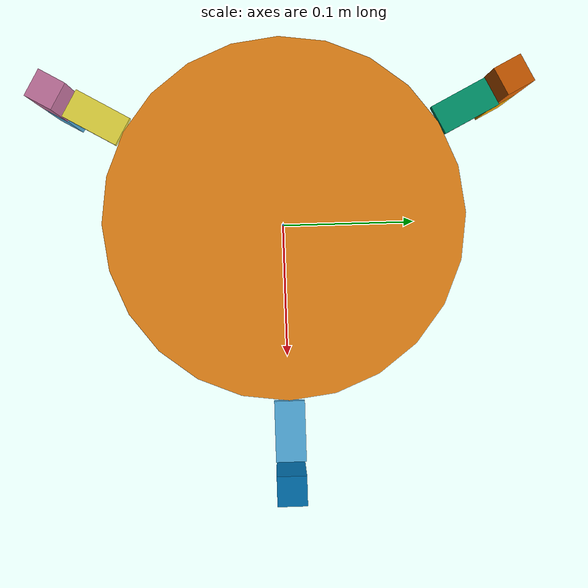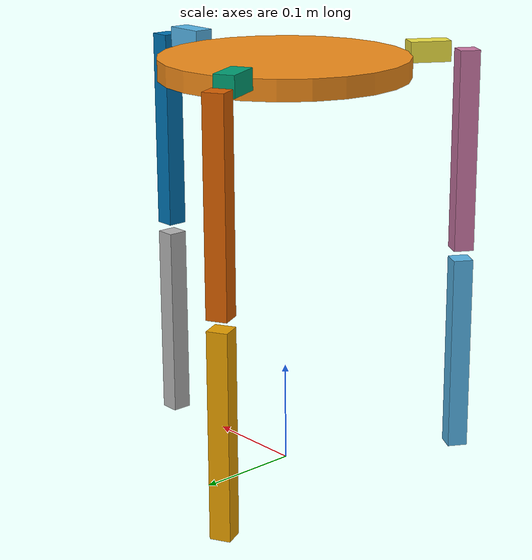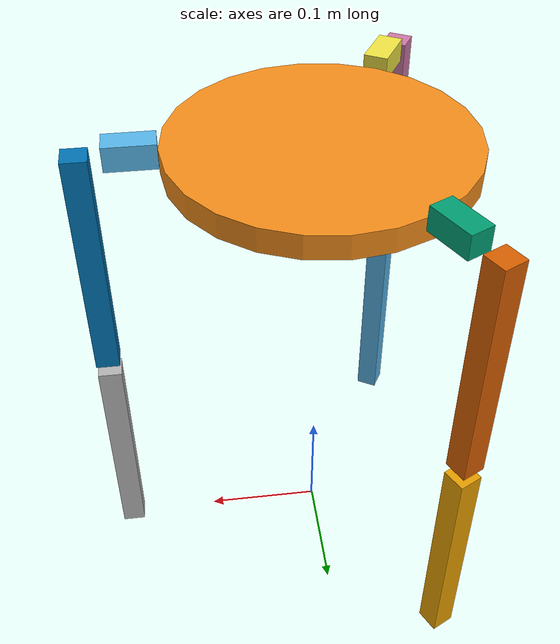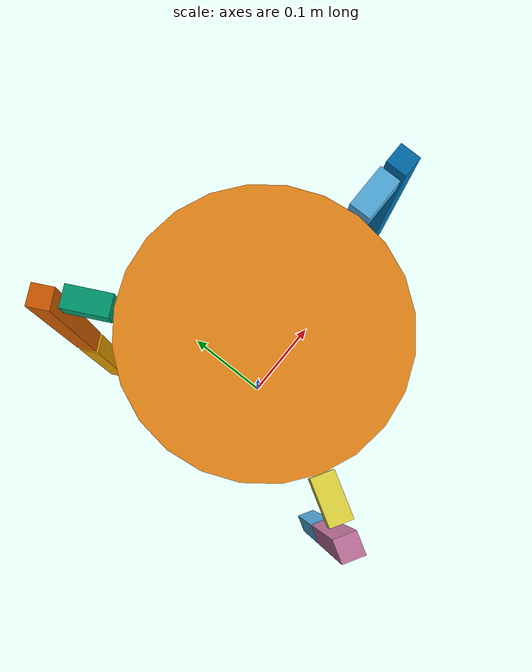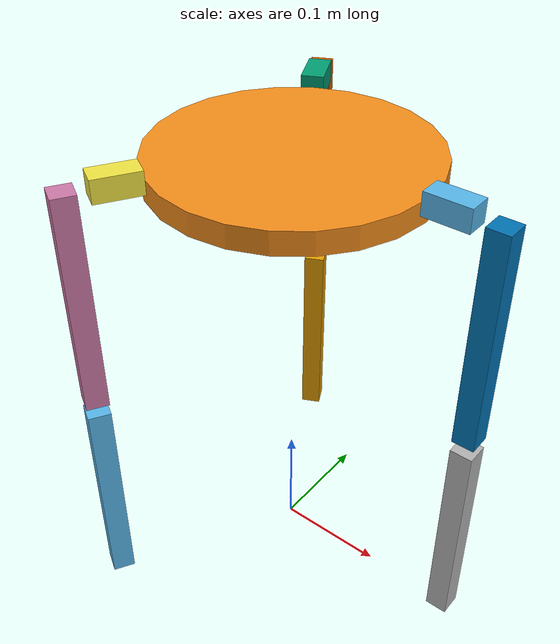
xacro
<?xml version="1.0"?>
<!-- Revolute-Revolute Manipulator -->
<robot name="3legged_robot" xmlns:xacro="http://www.ros.org/wiki/xacro">

  <!-- Constants for robot dimensions -->
  <xacro:property name="PI" value="3.1415926535897931"/>
  <xacro:property name="config_poly_A" value="0.16 0 0" />
  <xacro:property name="config_poly_B" value="-0.08 0.138 0" />
  <xacro:property name="config_poly_C" value="0.8 0.138 0" />

  <xacro:property name="platform_height" value="0.41"/>

  <xacro:property name="platform_pos" value="0 0 ${platform_height}" />
  <xacro:property name="platform_or" value="0 0 0"/>
  <!-- generalized coordinates these can be calculated separately in many cases-->
  <xacro:property name="theta_hip_1_a" value="0" />
  <xacro:property name="theta_hip_1_b" value="0" />
  <xacro:property name="theta_hip_1_c" value="0" />

  <xacro:property name="theta_hip_2_a" value="0" />
  <xacro:property name="theta_hip_2_b" value="0" />
  <xacro:property name="theta_hip_2_c" value="0" />

  <xacro:property name="theta_knee_a" value="0" />
  <xacro:property name="theta_knee_b" value="0" />
  <xacro:property name="theta_knee_c" value="0" />

  <xacro:property name="platform_mass" value="3" />
  <xacro:property name="hip_mass" value="0.1"/>
  <xacro:property name="leg_mass" value="0.5" />
  <xacro:property name="platform_thickness" value="0.02"/>
  <xacro:property name="platform_radius" value="0.12" />
  <xacro:property name="hip_length" value="0.04" />
  <xacro:property name="hip_thickness" value="0.02" />
  <xacro:property name="leg_length" value="0.2"/>
  <xacro:property name="leg_thickness" value="0.02" />

  <!-- Import all Gazebo-customization elements, including Gazebo colors -->
  <!-- Import Rviz colors -->

  <link name="platform">
    <collision>
      <!--origin xyz="${platform_pos}" rpy="${platform_or}"/-->
      <origin xyz="0 0 0.4" rpy="0 0 0"/>
      <geometry>
        <cylinder radius="${platform_radius - 0.01}" length="${platform_thickness}"/>
      </geometry>
    </collision>

    <visual>
      <!--origin xyz="${platform_pos}" rpy="${platform_or}"/-->
      <origin xyz="0 0 0.4" rpy="0 0 0"/>
      <geometry>
    <cylinder radius="${platform_radius}" length="${platform_thickness}"/>
      </geometry>
      <material name="orange"/>
    </visual>

    <inertial>
      <!--origin xyz="${platform_pos}" rpy="${platform_or}"/-->
      <origin xyz="0 0 0.4" rpy="0 0 0"/>
      <mass value="${platform_mass}"/>
      <inertia
    ixx="${platform_mass / 12.0 * (platform_thickness*platform_thickness) + platform_mass / 4 * platform_radius*platform_radius}"
    ixy="0.0"
    ixz="0.0"
    iyy="${platform_mass / 12.0 * (platform_thickness*platform_thickness) + platform_mass / 4 * platform_radius*platform_radius}"
    iyz="0.0"
    izz="${platform_mass / 2 * platform_radius * platform_radius}"/>
    </inertial>
  </link>

  <joint name="hip_joint_a" type="continuous">
    <parent link="platform"/>
    <child link="hip_link_a"/>
    <!--origin xyz="${platform_radius} 0 0" /-->
    <origin xyz="${platform_radius} 0 0" />
    <axis xyz="0 0 1"/>
  </joint>

  <joint name="hip_joint_b" type="continuous">
    <parent link="platform"/>
    <child link="hip_link_b"/>
    <origin xyz="-0.06 0.1039 0" />
    <axis xyz="0 0 1" />
  </joint>

  <joint name="hip_joint_c" type="continuous">
    <parent link="platform"/>
    <child link="hip_link_c"/>
    <origin xyz="-0.06 -0.1039 0" />
    <axis xyz="0 0 1" />
  </joint>

  <link name="hip_link_a">
    <collision>
      <origin xyz="${hip_length/ 2}  0 ${platform_height}" rpy="0 0 0"/>
      <geometry>
        <box size="${hip_length} ${hip_thickness} ${hip_thickness}"/>
      </geometry>
    </collision>

    <visual>
      <origin xyz="${hip_length/ 2}  0 ${platform_height}" rpy="0 0 0"/>
      <geometry>
    <box size="${hip_length} ${hip_thickness} ${hip_thickness}"/>
      </geometry>
    </visual>

    <inertial>
      <origin xyz="${hip_length/ 2}  0 ${platform_height}" rpy="0 0 0"/>
      <mass value="${hip_mass}"/>
      <inertia
        ixx="${hip_mass / 12.0 * (hip_thickness*hip_thickness + hip_thickness*hip_thickness)}" ixy="0.0" ixz="0.0"
        iyy="${hip_mass / 12.0 * (hip_length*hip_length + hip_thickness*hip_thickness)}" iyz="0.0"
        izz="${hip_mass / 12.0 * (hip_length*hip_length + hip_thickness*hip_thickness)}"/>
    </inertial>
  </link>

  <link name="hip_link_b">
    <collision>
      <origin xyz="-0.01 0.0173 ${platform_height}" rpy="0 0 2.04"/>
      <geometry>
        <box size="${hip_length} ${hip_thickness} ${hip_thickness}"/>
      </geometry>
    </collision>

    <visual>
      <origin xyz="-0.01 0.0173 ${platform_height}" rpy="0 0 2.04"/>
      <geometry>
    <box size="${hip_length} ${hip_thickness} ${hip_thickness}"/>
      </geometry>
    </visual>

    <inertial>
      <origin xyz="-0.01 0.0173 ${platform_height}" rpy="0 0 2.04"/>
      <mass value="${hip_mass}"/>
      <inertia
        ixx="${hip_mass / 12.0 * (hip_thickness*hip_thickness + hip_thickness*hip_thickness)}" ixy="0.0" ixz="0.0"
        iyy="${hip_mass / 12.0 * (hip_length*hip_length + hip_thickness*hip_thickness)}" iyz="0.0"
        izz="${hip_mass / 12.0 * (hip_length*hip_length + hip_thickness*hip_thickness)}"/>
    </inertial>
  </link>

  <link name="hip_link_c">
    <collision>
      <origin xyz="-0.01 -0.0173 ${platform_height}" rpy="0 0 4.188"/>
      <geometry>
        <box size="${hip_length} ${hip_thickness} ${hip_thickness}"/>
      </geometry>
    </collision>

    <visual>
      <origin xyz="-0.01 -0.0173 ${platform_height}" rpy="0 0 4.188"/>
      <geometry>
    <box size="${hip_length} ${hip_thickness} ${hip_thickness}"/>
      </geometry>
    </visual>

    <inertial>
      <origin xyz="-0.01 -0.0173 ${platform_height}" rpy="0 0 4.188"/>
      <mass value="${hip_mass}"/>
      <inertia
        ixx="${hip_mass / 12.0 * (hip_thickness*hip_thickness + hip_thickness*hip_thickness)}" ixy="0.0" ixz="0.0"
        iyy="${hip_mass / 12.0 * (hip_length*hip_length + hip_thickness*hip_thickness)}" iyz="0.0"
        izz="${hip_mass / 12.0 * (hip_length*hip_length + hip_thickness*hip_thickness)}"/>
    </inertial>
  </link>

  <joint name="hip_joint_a_2" type="continuous">
    <parent link="hip_link_a"/>
    <child link="thigh_link_a"/>
    <origin xyz="${hip_length+ leg_thickness / 2} 0 ${platform_height}"/>
    <axis xyz="0 1 0"/>
  </joint>

  <joint name="hip_joint_b_2" type="continuous">
    <parent link="hip_link_b"/>
    <child link="thigh_link_b"/>
    <origin xyz="-0.025 0.043 ${platform_height}"/>
    <axis xyz="0.5 0.8660254 0"/>
  </joint>

  <joint name="hip_joint_c_2" type="continuous">
    <parent link="hip_link_c"/>
    <child link="thigh_link_c"/>
    <origin xyz="-0.025 -0.043 ${platform_height}"/>
    <axis xyz="0.5 -0.8660254 0"/>
  </joint>

  <link name="thigh_link_a">
    <collision>
      <origin xyz="${leg_thickness / 2}  0 ${- leg_length/2}" rpy="0 0 0"/>
      <geometry>
        <box size="${leg_thickness} ${leg_thickness} ${ - leg_length}"/>
      </geometry>
    </collision>

    <visual>
      <origin xyz="${leg_thickness / 2}  0 ${- leg_length/2}" rpy="0 0 0"/>
      <geometry>
        <box size="${leg_thickness} ${leg_thickness} ${ - leg_length}"/>
      </geometry>
    </visual>

    <inertial>
      <origin xyz="${leg_thickness/ 2}  0 ${ - leg_length/2}" rpy="0 0 0"/>
      <mass value="${leg_mass}"/>
      <inertia
        ixx="${leg_mass / 12.0 * (leg_length*leg_length + leg_thickness*leg_thickness)}" ixy="0.0" ixz="0.0"
        iyy="${leg_mass / 12.0 * (leg_length*leg_length + leg_thickness*leg_thickness)}" iyz="0.0"
        izz="${leg_mass / 12.0 * (leg_thickness*leg_thickness + leg_thickness*leg_thickness)}"/>
    </inertial>
  </link>

  <link name="thigh_link_b">
    <collision>
      <origin xyz="-0.005  0.008 ${- leg_length/2}" rpy="0 0 2.04"/>
      <geometry>
        <box size="${leg_thickness} ${leg_thickness} ${ - leg_length}"/>
      </geometry>
    </collision>

    <visual>
      <origin xyz="-0.005  0.008 ${- leg_length/2}" rpy="0 0 2.04"/>
      <geometry>
        <box size="${leg_thickness} ${leg_thickness} ${ - leg_length}"/>
      </geometry>
    </visual>

    <inertial>
      <origin xyz="-0.005  0.008 ${- leg_length/2}" rpy="0 0 2.04"/>
      <mass value="${leg_mass}"/>
      <inertia
        ixx="${leg_mass / 12.0 * (leg_length*leg_length + leg_thickness*leg_thickness)}" ixy="0.0" ixz="0.0"
        iyy="${leg_mass / 12.0 * (leg_length*leg_length + leg_thickness*leg_thickness)}" iyz="0.0"
        izz="${leg_mass / 12.0 * (leg_thickness*leg_thickness + leg_thickness*leg_thickness)}"/>
    </inertial>
  </link>

  <link name="thigh_link_c">
    <collision>
      <origin xyz="-0.005  -0.008 ${- leg_length/2}" rpy="0 0 4.188"/>
      <geometry>
        <box size="${leg_thickness} ${leg_thickness} ${ - leg_length}"/>
      </geometry>
    </collision>

    <visual>
      <origin xyz="-0.005  -0.008 ${- leg_length/2}" rpy="0 0 4.188"/>
      <geometry>
        <box size="${leg_thickness} ${leg_thickness} ${ - leg_length}"/>
      </geometry>
    </visual>

    <inertial>
      <origin xyz="-0.005  -0.008 ${- leg_length/2}" rpy="0 0 4.188"/>
      <mass value="${leg_mass}"/>
      <inertia
        ixx="${leg_mass / 12.0 * (leg_length*leg_length + leg_thickness*leg_thickness)}" ixy="0.0" ixz="0.0"
        iyy="${leg_mass / 12.0 * (leg_length*leg_length + leg_thickness*leg_thickness)}" iyz="0.0"
        izz="${leg_mass / 12.0 * (leg_thickness*leg_thickness + leg_thickness*leg_thickness)}"/>
    </inertial>
  </link>
  <!-- knees -->
  <joint name="knee_joint_a" type="continuous">
    <parent link="thigh_link_a"/>
    <child link="leg_link_a"/>
    <origin xyz="0.01 0 ${- leg_length -0.01}"/>
    <axis xyz="0 1 0"/>
  </joint>

  <joint name="knee_joint_b" type="continuous">
    <parent link="thigh_link_b"/>
    <child link="leg_link_b"/>
    <origin xyz="-0.005 0.008 ${- leg_length -0.01}"/>
    <axis xyz="0.5 0.8660254 0"/>
  </joint>

  <joint name="knee_joint_c" type="continuous">
    <parent link="thigh_link_c"/>
    <child link="leg_link_c"/>
    <origin xyz="-0.005 -0.008 ${- leg_length -0.01}"/>
    <axis xyz="0.5 -0.8660254 0"/>
  </joint>

  <link name="leg_link_a">
    <collision>
      <origin xyz="0  0 ${- leg_length/2}" rpy="0 0 0"/>
      <geometry>
        <box size="${leg_thickness} ${leg_thickness} ${ - leg_length}"/>
      </geometry>
    </collision>

    <visual>
      <origin xyz="0  0 ${- leg_length/2}" rpy="0 0 0"/>
      <geometry>
        <box size="${leg_thickness} ${leg_thickness} ${ - leg_length}"/>
      </geometry>
    </visual>

    <inertial>
      <origin xyz="0  0 ${- leg_length/2}" rpy="0 0 0"/>
      <mass value="${leg_mass}"/>
      <inertia
        ixx="${leg_mass / 12.0 * (leg_length*leg_length + leg_thickness*leg_thickness)}" ixy="0.0" ixz="0.0"
        iyy="${leg_mass / 12.0 * (leg_length*leg_length + leg_thickness*leg_thickness)}" iyz="0.0"
        izz="${leg_mass / 12.0 * (leg_thickness*leg_thickness + leg_thickness*leg_thickness)}"/>
    </inertial>
  </link>

    <link name="leg_link_b">
    <collision>
      <origin xyz="0  0 ${- leg_length/2}" rpy="0 0 2.04"/>
      <geometry>
        <box size="${leg_thickness} ${leg_thickness} ${ - leg_length}"/>
      </geometry>
    </collision>

    <visual>
      <origin xyz="0  0 ${- leg_length/2}" rpy="0 0 2.04"/>
      <geometry>
        <box size="${leg_thickness} ${leg_thickness} ${ - leg_length}"/>
      </geometry>
    </visual>

    <inertial>
      <origin xyz="0  0 ${- leg_length/2}" rpy="0 0 2.04"/>
      <mass value="${leg_mass}"/>
      <inertia
        ixx="${leg_mass / 12.0 * (leg_length*leg_length + leg_thickness*leg_thickness)}" ixy="0.0" ixz="0.0"
        iyy="${leg_mass / 12.0 * (leg_length*leg_length + leg_thickness*leg_thickness)}" iyz="0.0"
        izz="${leg_mass / 12.0 * (leg_thickness*leg_thickness + leg_thickness*leg_thickness)}"/>
    </inertial>
  </link>

    <link name="leg_link_c">
    <collision>
      <origin xyz="0  0 ${- leg_length/2}" rpy="0 0 4.188"/>
      <geometry>
        <box size="${leg_thickness} ${leg_thickness} ${ - leg_length}"/>
      </geometry>
    </collision>

    <visual>
      <origin xyz="0  0 ${- leg_length/2}" rpy="0 0 4.188"/>
      <geometry>
        <box size="${leg_thickness} ${leg_thickness} ${ - leg_length}"/>
      </geometry>
    </visual>

    <inertial>
      <origin xyz="0  0 ${- leg_length/2}" rpy="0 0 4.188"/>
      <mass value="${leg_mass}"/>
      <inertia
        ixx="${leg_mass / 12.0 * (leg_length*leg_length + leg_thickness*leg_thickness)}" ixy="0.0" ixz="0.0"
        iyy="${leg_mass / 12.0 * (leg_length*leg_length + leg_thickness*leg_thickness)}" iyz="0.0"
        izz="${leg_mass / 12.0 * (leg_thickness*leg_thickness + leg_thickness*leg_thickness)}"/>
    </inertial>
  </link>

</robot>
